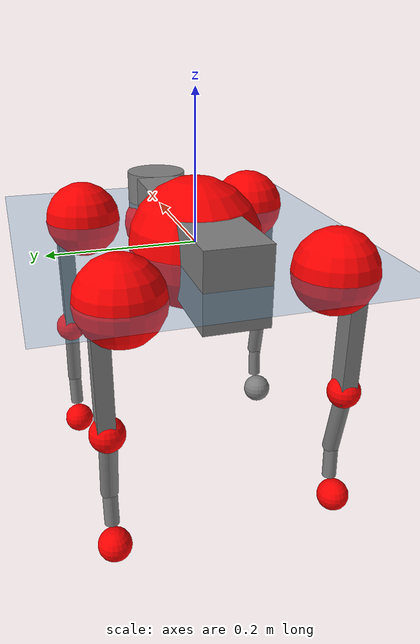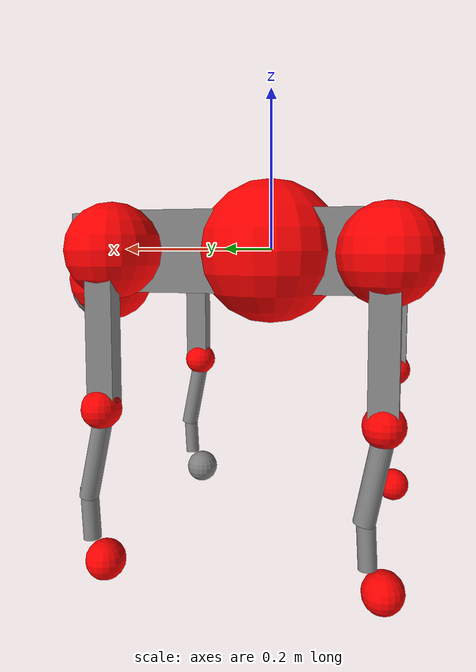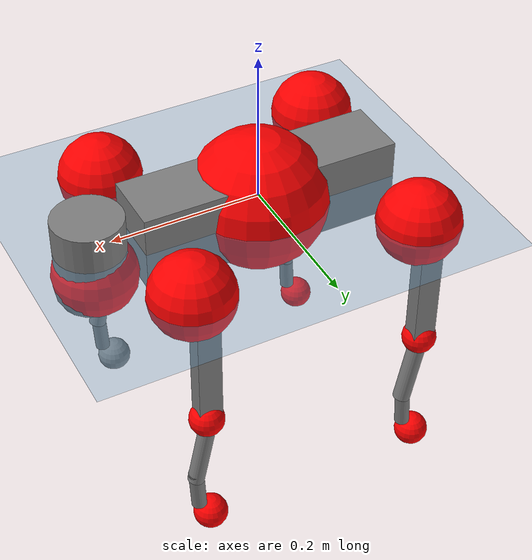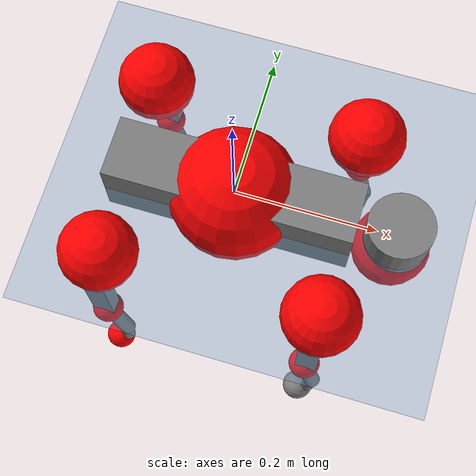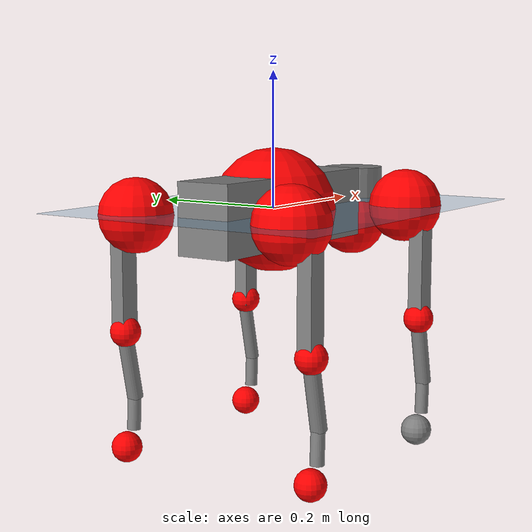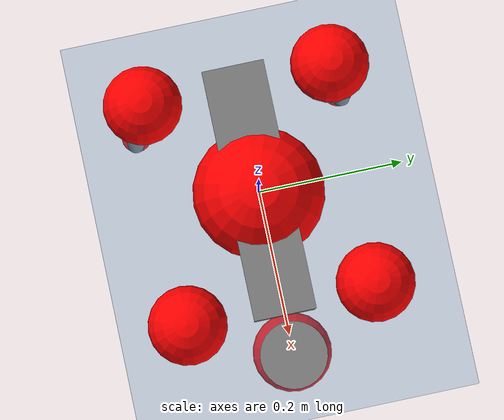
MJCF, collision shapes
<mujoco model="go2">
  <compiler angle="radian" assetdir="assets" balanceinertia="true" inertiafromgeom="false"/>

  <option timestep="0.005" density="1.2" viscosity="2e-05"/>

  <size nkey="1"/>

  <visual>
    <quality shadowsize="8192"/>
    <map shadowclip="0.5"/>
  </visual>

  <default>
    <default class="/">
      <geom contype="0" conaffinity="0" group="1" solref="-1000 -80"/>
      <site size="0.01 0.005 0.005" group="5"/>
      <general forcelimited="true" biastype="affine" gainprm="20" biasprm="0 -20 -0.5"/>
      <default class="go2">
        <joint armature="0.01" damping="0.01" frictionloss="0.2"/>
        <geom condim="1" margin="0.001"/>
        <default class="visual">
          <geom type="mesh" group="2"/>
        </default>
        <default class="collision">
          <geom group="3"/>
          <default class="foot">
            <geom size="0.022 0 0" condim="6" priority="1" friction="0.8 0.02 0.01" solimp="0.015 1 0.022"/>
          </default>
        </default>
        <default class="reward_collision_sphere">
          <geom group="5" rgba="1 0 0 1"/>
        </default>
      </default>
    </default>
  </default>

  <asset>
    <texture type="skybox" colorspace="auto" name="//unnamed_texture_0" builtin="gradient" rgb1="0.95 0.95 0.95" rgb2="0.95 0.95 0.95" width="100" height="600"/>
    <texture type="2d" colorspace="auto" name="texplane" builtin="checker" rgb1="0.345 0.575 0.748" rgb2="0.345 0.575 0.748" markrgb="1 1 1" width="512" height="512"/>
    <material name="MatPlane" class="/" texture="texplane" texuniform="true" texrepeat="2 2" specular="0.9"/>
    <material name="metal" class="/" rgba="0.9 0.95 0.95 1"/>
    <material name="black" class="/" rgba="0 0 0 1"/>
    <material name="white" class="/"/>
    <material name="gray" class="/" rgba="0.671705 0.692426 0.77427 1"/>
    <mesh name="base_0" class="/" file="base_0.obj"/>
    <mesh name="base_1" class="/" file="base_1.obj"/>
    <mesh name="base_2" class="/" file="base_2.obj"/>
    <mesh name="base_3" class="/" file="base_3.obj"/>
    <mesh name="base_4" class="/" file="base_4.obj"/>
    <mesh name="hip_0" class="/" file="hip_0.obj"/>
    <mesh name="hip_1" class="/" file="hip_1.obj"/>
    <mesh name="thigh_0" class="/" file="thigh_0.obj"/>
    <mesh name="thigh_1" class="/" file="thigh_1.obj"/>
    <mesh name="thigh_mirror_0" class="/" file="thigh_mirror_0.obj"/>
    <mesh name="thigh_mirror_1" class="/" file="thigh_mirror_1.obj"/>
    <mesh name="calf_0" class="/" file="calf_0.obj"/>
    <mesh name="calf_1" class="/" file="calf_1.obj"/>
    <mesh name="calf_mirror_0" class="/" file="calf_mirror_0.obj"/>
    <mesh name="calf_mirror_1" class="/" file="calf_mirror_1.obj"/>
    <mesh name="foot" class="/" file="foot.obj"/>
  </asset>

  <worldbody>
    <geom name="floor" class="/" size="100 100 0.125" type="plane" group="0" material="MatPlane"/>
    <light name="toplight_shadow" class="/" pos="0 0 5" dir="0.0990148 0.0990148 -0.990148" type="directional" ambient="0.04 0.04 0.04" diffuse="0.55 0.55 0.55" specular="0.12 0.12 0.12"/>
    <light name="toplight_fill" class="/" pos="0 0 5" dir="0.0990148 0.0990148 -0.990148" type="directional" castshadow="false" ambient="0.04 0.04 0.04" diffuse="0.3 0.3 0.3" specular="0.08 0.08 0.08"/>
    <body name="trunk" childclass="go2" pos="0.000676938 -0.000323066 -0.00254825" quat="1 -0.000109311 7.12645e-05 -4.83174e-05">
      <inertial pos="0.0154038 0.00383345 -0.00454632" quat="-4.7721e-05 0.708941 -0.0027101 0.705263" mass="5.50815" diaginertia="0.0378429 0.188752 0.00929809"/>
      <joint name="//unnamed_joint_0" type="free" armature="0" damping="0" frictionloss="0"/>
      <geom name="//unnamed_geom_1" class="visual" material="black" mesh="base_0"/>
      <geom name="//unnamed_geom_2" class="visual" material="black" mesh="base_1"/>
      <geom name="//unnamed_geom_3" class="visual" material="black" mesh="base_2"/>
      <geom name="//unnamed_geom_4" class="visual" material="white" mesh="base_3"/>
      <geom name="//unnamed_geom_5" class="visual" material="gray" mesh="base_4"/>
      <geom name="trunk_1" class="collision" size="0.172311 0.042826 0.0522156" type="box"/>
      <geom name="trunk_2" class="collision" size="0.0458032 0.0412228" pos="0.227414 0 0.00819728" type="cylinder"/>
      <geom name="trunk_3" class="collision" size="0.043055" pos="0.233798 0 -0.0491837"/>
      <geom name="//unnamed_geom_9" class="reward_collision_sphere" size="0.0916063"/>
      <geom name="//unnamed_geom_10" class="reward_collision_sphere" size="0.0549638" pos="0.223424 0 -0.0368878"/>
      <site name="imu" pos="-0.0274096 0.00273245 0.0373183" size="0.00916063"/>
      <camera name="track" pos="0 -2.26103 0" quat="0.707107 0.707107 0 0" mode="trackcom"/>
      <camera name="ego_camera" pos="0.248959 0 0.0368878" quat="-0.5 -0.5 0.5 0.5"/>
      <body name="FL_hip" pos="0.153628 0.0520283 0.00103743" quat="1 -0.00015866 -0.00010225 0.000578569">
        <inertial pos="-0.00379186 0.00361055 0.000380047" quat="0.493978 0.501085 0.522922 0.481094" mass="0.534877" diaginertia="0.000292075 0.00110763 0.000182422"/>
        <joint name="FL_hip_joint" pos="0 0 0" axis="0.999989 -0.00042865 -0.00461476" range="-1.07896 1.00306" armature="0.0091179" damping="0.0236451" frictionloss="0.191069"/>
        <geom name="//unnamed_geom_11" class="visual" material="metal" mesh="hip_0"/>
        <geom name="//unnamed_geom_12" class="visual" material="gray" mesh="hip_1"/>
        <geom name="//unnamed_geom_13" class="collision" size="0.0421389 0.0183213" pos="0 0.0904414 0" quat="0.707107 0.707107 0 0" type="cylinder"/>
        <geom name="//unnamed_geom_14" class="reward_collision_sphere" size="0.0549638" pos="0 0.0791362 0"/>
        <body name="FL_thigh" pos="-0.00105501 0.109353 0.00156248" quat="0.999998 0.000298261 -0.000572812 0.00200789">
          <inertial pos="-0.00340853 -0.0295004 -0.0284563" quat="0.827066 0.0773655 -0.0266728 0.556116" mass="0.892044" diaginertia="0.00195516 0.0101834 0.0003205"/>
          <joint name="FL_thigh_joint" pos="0 0 0" axis="0.00041997 1 -0.000769113" stiffness="0.00883722" range="-1.57461 3.5476" armature="0.00744642" damping="0.0221024" frictionloss="0.171724"/>
          <geom name="//unnamed_geom_15" class="visual" material="metal" mesh="thigh_0"/>
          <geom name="//unnamed_geom_16" class="visual" material="gray" mesh="thigh_1"/>
          <geom name="//unnamed_geom_17" class="collision" size="0.0975607 0.0112218 0.0155731" pos="0 0 -0.0873011" quat="0.707107 0 0.707107 0" type="box"/>
          <body name="FL_calf" pos="0.00240644 0.0020673 -0.177249" quat="1 -9.86646e-05 -3.9417e-05 0.000344284">
            <inertial pos="0.00720156 -0.00144073 -0.114722" quat="0.71539 0.00705939 0.0038199 0.698679" mass="0.189672" diaginertia="0.000479631 0.00258473 1.91656e-05"/>
            <joint name="FL_calf_joint" pos="0 0 0" axis="-0.000159295 0.999987 0.00500716" range="-2.8084 -0.859145" armature="0.00849907" damping="0.0153146" frictionloss="0.206292"/>
            <geom name="//unnamed_geom_18" class="visual" material="gray" mesh="calf_0"/>
            <geom name="//unnamed_geom_19" class="visual" material="black" mesh="calf_1"/>
            <geom name="FL_calf0" class="collision" size="0.0109928 0.0549638" pos="0.00638355 0 -0.0491837" quat="0.994493 0 -0.104807 0" type="cylinder"/>
            <geom name="//unnamed_geom_21" class="collision" size="0.0100767 0.0297721" pos="0.0159589 0 -0.12132" quat="0.999688 0 0.0249974 0" type="cylinder"/>
            <geom name="//unnamed_geom_22" class="visual" pos="0 0 -0.174602" quat="1 0 0 0" material="black" mesh="foot"/>
            <geom name="FL_foot" class="foot" size="0.0178854" pos="-0.00159589 0 -0.174602"/>
            <geom name="//unnamed_geom_24" class="reward_collision_sphere" size="0.0229016"/>
            <geom name="//unnamed_geom_25" class="reward_collision_sphere" size="0.0229016" pos="-0.00159589 0 -0.174602"/>
            <site name="FL_foot" class="foot" pos="-0.00159589 0 -0.174602" size="0.00916063"/>
          </body>
        </body>
      </body>
      <body name="FR_hip" pos="0.158193 -0.0538935 0.000552684" quat="0.999999 0.000375596 0.0012048 -0.000136666">
        <inertial pos="-0.00576344 0.000276688 -0.0027667" quat="0.490721 0.513108 0.494675 0.501208" mass="0.502551" diaginertia="0.000284194 0.00109956 0.000181801"/>
        <joint name="FR_hip_joint" pos="0 0 0" axis="0.999988 -0.0046874 -0.00122049" stiffness="0.0254277" range="-1.01602 1.01405" armature="0.00825307" damping="0.02335" frictionloss="0.206888"/>
        <geom name="//unnamed_geom_26" class="visual" pos="0 2.70746e-09 1.16129e-07" quat="4.63268e-05 1 0 0" material="metal" mesh="hip_0"/>
        <geom name="//unnamed_geom_27" class="visual" pos="0 4.38912e-09 -2.87231e-07" quat="4.63268e-05 1 0 0" material="gray" mesh="hip_1"/>
        <geom name="//unnamed_geom_28" class="collision" size="0.0421389 0.0183213" pos="0 -0.0904414 0" quat="0.707107 0.707107 0 0" type="cylinder"/>
        <geom name="//unnamed_geom_29" class="reward_collision_sphere" size="0.0549638" pos="0 -0.0791362 0"/>
        <body name="FR_thigh" pos="-0.00212045 -0.107889 0.00486759" quat="1 -0.000108775 -7.26528e-06 -0.000419568">
          <inertial pos="-0.00140658 0.0247323 -0.0297453" quat="0.561364 -0.019481 0.0870509 0.822747" mass="0.916384" diaginertia="0.00192178 0.0108044 0.000325881"/>
          <joint name="FR_thigh_joint" pos="0 0 0" axis="0.000810547 -1 0.000191191" range="-3.4902 1.61562" armature="0.0101377" damping="0" frictionloss="0.176356"/>
          <geom name="//unnamed_geom_30" class="visual" material="metal" mesh="thigh_mirror_0"/>
          <geom name="//unnamed_geom_31" class="visual" material="gray" mesh="thigh_mirror_1"/>
          <geom name="//unnamed_geom_32" class="collision" size="0.0975607 0.0112218 0.0155731" pos="0 0 -0.0873011" quat="0.707107 0 0.707107 0" type="box"/>
          <body name="FR_calf" pos="-0.00271208 -0.000598591 -0.176247" quat="0.999999 -0.0010433 -0.000779778 -0.000135175">
            <inertial pos="0.00432587 0.00110761 -0.116646" quat="0.708448 -0.0110599 -0.00308118 0.70567" mass="0.175771" diaginertia="0.000444338 0.00256328 1.84583e-05"/>
            <joint name="FR_calf_joint" pos="0 0 0" axis="-0.00537684 -0.999912 0.0121673" range="0.888021 2.77152" armature="0.00828845" damping="0.0210505" frictionloss="0.161517"/>
            <geom name="//unnamed_geom_33" class="visual" material="gray" mesh="calf_mirror_0"/>
            <geom name="//unnamed_geom_34" class="visual" material="black" mesh="calf_mirror_1"/>
            <geom name="FR_calf0" class="collision" size="0.0119088 0.0549638" pos="0.00797944 0 -0.0491837" quat="0.995004 0 -0.0998334 0" type="cylinder"/>
            <geom name="//unnamed_geom_36" class="collision" size="0.0100767 0.0297721" pos="0.0159589 0 -0.12132" quat="0.999688 0 0.0249974 0" type="cylinder"/>
            <geom name="//unnamed_geom_37" class="visual" pos="0 0 -0.174602" quat="1 0 0 0" material="black" mesh="foot"/>
            <geom name="FR_foot" class="foot" size="0.0233134" pos="-0.00159589 0 -0.174602"/>
            <geom name="//unnamed_geom_39" class="reward_collision_sphere" size="0.0229016"/>
            <geom name="//unnamed_geom_40" class="reward_collision_sphere" size="0.0229016" pos="-0.00159589 0 -0.174602"/>
            <site name="FR_foot" class="foot" pos="-0.00159589 0 -0.174602" size="0.00916063"/>
          </body>
        </body>
      </body>
      <body name="RL_hip" pos="-0.155312 0.053972 -0.00251884" quat="1 0.00061336 -1.96443e-05 0.000436045">
        <inertial pos="0.00657057 0.000110592 0.000679644" quat="0.49757 0.499101 0.506588 0.496679" mass="0.534102" diaginertia="0.000269501 0.00104686 0.000175114"/>
        <joint name="RL_hip_joint" pos="0 0 0" axis="-0.999683 0.0243482 -0.00640923" range="-1.08265 0.996708" armature="0.00801938" damping="0.0129941" frictionloss="0.176783"/>
        <geom name="//unnamed_geom_41" class="visual" pos="1.89777e-10 0 3.72006e-08" quat="4.63268e-05 0 1 0" material="metal" mesh="hip_0"/>
        <geom name="//unnamed_geom_42" class="visual" pos="3.07651e-10 0 3.29916e-08" quat="4.63268e-05 0 1 0" material="gray" mesh="hip_1"/>
        <geom name="//unnamed_geom_43" class="collision" size="0.0421389 0.0183213" pos="0 0.0904414 0" quat="0.707107 0.707107 0 0" type="cylinder"/>
        <geom name="//unnamed_geom_44" class="reward_collision_sphere" size="0.0549638" pos="0 0.0791362 0"/>
        <body name="RL_thigh" pos="0.000907483 0.105563 0.00214273" quat="0.999999 -0.000610743 -0.000477458 -0.00120716">
          <inertial pos="-0.00364084 -0.0301168 -0.0244766" quat="0.828335 0.0870154 -0.0188688 0.553112" mass="0.922526" diaginertia="0.00188465 0.0108968 0.000314982"/>
          <joint name="RL_thigh_joint" pos="0 0 0" axis="-0.0140705 0.999759 0.0168551" range="-0.559537 4.53565" armature="0.00938139" damping="0.00323906" frictionloss="0.172016"/>
          <geom name="//unnamed_geom_45" class="visual" material="metal" mesh="thigh_0"/>
          <geom name="//unnamed_geom_46" class="visual" material="gray" mesh="thigh_1"/>
          <geom name="//unnamed_geom_47" class="collision" size="0.0975607 0.0112218 0.0155731" pos="0 0 -0.0873011" quat="0.707107 0 0.707107 0" type="box"/>
          <body name="RL_calf" pos="-0.000809026 -0.00209189 -0.175652" quat="1 0.000215272 0.000363985 -0.000633847">
            <inertial pos="0.00449795 -0.00213594 -0.117245" quat="0.70864 -0.000342904 -0.00584069 0.705546" mass="0.184495" diaginertia="0.000496012 0.00278749 2.04065e-05"/>
            <joint name="RL_calf_joint" pos="0 0 0" axis="-0.00529486 0.999986 0.000523636" range="-2.80005 -0.857116" armature="0.00721333" damping="0.00502442" frictionloss="0.178066"/>
            <geom name="//unnamed_geom_48" class="visual" material="gray" mesh="calf_0"/>
            <geom name="//unnamed_geom_49" class="visual" material="black" mesh="calf_1"/>
            <geom name="RL_calf0" class="collision" size="0.0119088 0.0549638" pos="0.00797944 0 -0.0491837" quat="0.995004 0 -0.0998334 0" type="cylinder"/>
            <geom name="//unnamed_geom_51" class="collision" size="0.0100767 0.0297721" pos="0.0159589 0 -0.12132" quat="0.999688 0 0.0249974 0" type="cylinder"/>
            <geom name="//unnamed_geom_52" class="visual" pos="0 0 -0.174602" quat="1 0 0 0" material="black" mesh="foot"/>
            <geom name="RL_foot" class="foot" size="0.0205837" pos="-0.00159589 0 -0.174602"/>
            <geom name="//unnamed_geom_54" class="reward_collision_sphere" size="0.0229016"/>
            <geom name="//unnamed_geom_55" class="reward_collision_sphere" size="0.0229016" pos="-0.00159589 0 -0.174602"/>
            <site name="RL_foot" class="foot" pos="-0.00159589 0 -0.174602" size="0.00916063"/>
          </body>
        </body>
      </body>
      <body name="RR_hip" pos="-0.150643 -0.052776 0.0016394" quat="0.999997 0.000588674 -0.00188868 -0.00132134">
        <inertial pos="0.00489183 -0.00460922 -0.00100107" quat="0.501517 0.494421 0.500003 0.50401" mass="0.508979" diaginertia="0.000281114 0.00111236 0.000163497"/>
        <joint name="RR_hip_joint" pos="0 0 0" axis="-0.999991 4.01314e-05 -0.0042596" range="-1.09403 1.05193" armature="0.00786232" damping="0.00835433" frictionloss="0.190664"/>
        <geom name="//unnamed_geom_56" class="visual" pos="-1.78263e-10 2.70746e-09 -7.8928e-08" quat="2.14617e-09 4.63268e-05 4.63268e-05 -1" material="metal" mesh="hip_0"/>
        <geom name="//unnamed_geom_57" class="visual" pos="-3.36129e-10 4.38912e-09 3.20222e-07" quat="2.14617e-09 4.63268e-05 4.63268e-05 -1" material="gray" mesh="hip_1"/>
        <geom name="//unnamed_geom_58" class="collision" size="0.0421389 0.0183213" pos="0 -0.0904414 0" quat="0.707107 0.707107 0 0" type="cylinder"/>
        <geom name="//unnamed_geom_59" class="reward_collision_sphere" size="0.0549638" pos="0 -0.0791362 0"/>
        <body name="RR_thigh" pos="-0.000231026 -0.109139 -0.00313478" quat="0.999999 -0.000244614 0.000234272 0.00101562">
          <inertial pos="-0.00352374 0.0258026 -0.0268664" quat="0.560156 -0.0187248 0.0840753 0.823897" mass="0.94296" diaginertia="0.00194745 0.0107707 0.000333719"/>
          <joint name="RR_thigh_joint" pos="0 0 0" axis="0.00292128 -0.999979 0.00572552" range="-4.53057 0.436607" armature="0.0109439" damping="0.000913104" frictionloss="0.175316"/>
          <geom name="//unnamed_geom_60" class="visual" material="metal" mesh="thigh_mirror_0"/>
          <geom name="//unnamed_geom_61" class="visual" material="gray" mesh="thigh_mirror_1"/>
          <geom name="//unnamed_geom_62" class="collision" size="0.0975607 0.0112218 0.0155731" pos="0 0 -0.0873011" quat="0.707107 0 0.707107 0" type="box"/>
          <body name="RR_calf" pos="0.00089873 -0.00106831 -0.173009" quat="0.999999 -0.000559364 -0.000311629 -0.0007906">
            <inertial pos="0.00371775 0.00254079 -0.116112" quat="0.703777 -0.00482675 0.00147384 0.710403" mass="0.186237" diaginertia="0.000497392 0.00275985 1.9335e-05"/>
            <joint name="RR_calf_joint" pos="0 0 0" axis="0.00165174 -0.999988 0.00470134" stiffness="0.008806" range="0.793041 2.7581" armature="0.00865965" damping="0.00469573" frictionloss="0.195104"/>
            <geom name="//unnamed_geom_63" class="visual" material="gray" mesh="calf_mirror_0"/>
            <geom name="//unnamed_geom_64" class="visual" material="black" mesh="calf_mirror_1"/>
            <geom name="RR_calf0" class="collision" size="0.0119088 0.0549638" pos="0.00797944 0 -0.0491837" quat="0.995004 0 -0.0998334 0" type="cylinder"/>
            <geom name="//unnamed_geom_66" class="collision" size="0.0100767 0.0297721" pos="0.0159589 0 -0.12132" quat="0.999688 0 0.0249974 0" type="cylinder"/>
            <geom name="//unnamed_geom_67" class="visual" pos="0 0 -0.174602" quat="1 0 0 0" material="black" mesh="foot"/>
            <geom name="RR_foot" class="foot" size="0.0164675" pos="-0.00159589 0 -0.174602"/>
            <geom name="//unnamed_geom_69" class="reward_collision_sphere" size="0.0229016"/>
            <geom name="//unnamed_geom_70" class="reward_collision_sphere" size="0.0229016" pos="-0.00159589 0 -0.174602"/>
            <site name="RR_foot" class="foot" pos="-0.00159589 0 -0.174602" size="0.00916063"/>
          </body>
        </body>
      </body>
    </body>
  </worldbody>

  <contact>
    <pair class="/" geom1="floor" geom2="FL_foot" name="//unnamed_contact_0"/>
    <pair class="/" geom1="floor" geom2="FR_foot" name="//unnamed_contact_1"/>
    <pair class="/" geom1="floor" geom2="RL_foot" name="//unnamed_contact_2"/>
    <pair class="/" geom1="floor" geom2="RR_foot" name="//unnamed_contact_3"/>
  </contact>

  <actuator>
    <general name="FL_hip" class="/" joint="FL_hip_joint" forcerange="-23.1784 23.1784" gainprm="18.4208" biasprm="0 -18.4208 -0.463555"/>
    <general name="FL_thigh" class="/" joint="FL_thigh_joint" forcerange="-22.6061 22.6061" gainprm="18.4208" biasprm="0 -18.4208 -0.463555"/>
    <general name="FL_calf" class="/" joint="FL_calf_joint" forcerange="-41.8794 41.8794" gainprm="18.4208" biasprm="0 -18.4208 -0.463555"/>
    <general name="FR_hip" class="/" joint="FR_hip_joint" forcerange="-20.3871 20.3871" gainprm="18.4208" biasprm="0 -18.4208 -0.463555"/>
    <general name="FR_thigh" class="/" joint="FR_thigh_joint" forcerange="-21.5833 21.5833" gainprm="18.4208" biasprm="0 -18.4208 -0.463555"/>
    <general name="FR_calf" class="/" joint="FR_calf_joint" forcerange="-41.9793 41.9793" gainprm="18.4208" biasprm="0 -18.4208 -0.463555"/>
    <general name="RL_hip" class="/" joint="RL_hip_joint" forcerange="-19.7384 19.7384" gainprm="18.4208" biasprm="0 -18.4208 -0.463555"/>
    <general name="RL_thigh" class="/" joint="RL_thigh_joint" forcerange="-22.0533 22.0533" gainprm="18.4208" biasprm="0 -18.4208 -0.463555"/>
    <general name="RL_calf" class="/" joint="RL_calf_joint" forcerange="-46.1169 46.1169" gainprm="18.4208" biasprm="0 -18.4208 -0.463555"/>
    <general name="RR_hip" class="/" joint="RR_hip_joint" forcerange="-20.3237 20.3237" gainprm="18.4208" biasprm="0 -18.4208 -0.463555"/>
    <general name="RR_thigh" class="/" joint="RR_thigh_joint" forcerange="-23.5889 23.5889" gainprm="18.4208" biasprm="0 -18.4208 -0.463555"/>
    <general name="RR_calf" class="/" joint="RR_calf_joint" forcerange="-37.665 37.665" gainprm="18.4208" biasprm="0 -18.4208 -0.463555"/>
  </actuator>

  <sensor>
    <gyro site="imu" name="imu_angular_velocity"/>
    <velocimeter site="imu" name="imu_linear_velocity"/>
    <framelinvel objtype="site" objname="FL_foot" name="FL_foot_global_linear_velocity"/>
    <framelinvel objtype="site" objname="FR_foot" name="FR_foot_global_linear_velocity"/>
    <framelinvel objtype="site" objname="RL_foot" name="RL_foot_global_linear_velocity"/>
    <framelinvel objtype="site" objname="RR_foot" name="RR_foot_global_linear_velocity"/>
  </sensor>

  <keyframe>
    <key name="home" qpos="0 0 0.325 1 0 0 0 0.1 0.8 -1.5 -0.1 -0.8 1.5 -0.1 0.8 -1.5 0.1 -0.8 1.5"/>
  </keyframe>
</mujoco>
